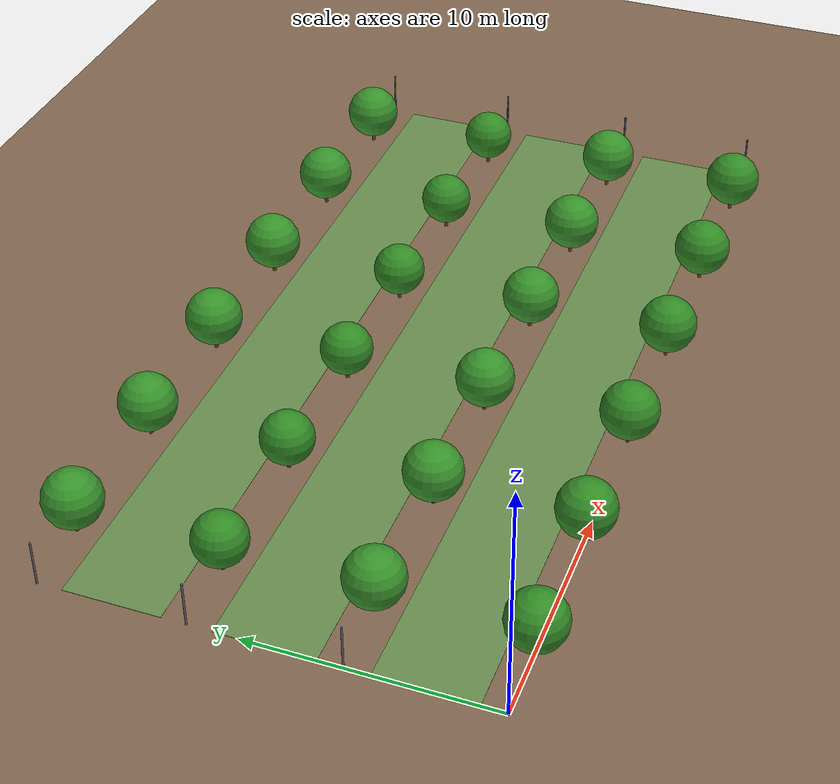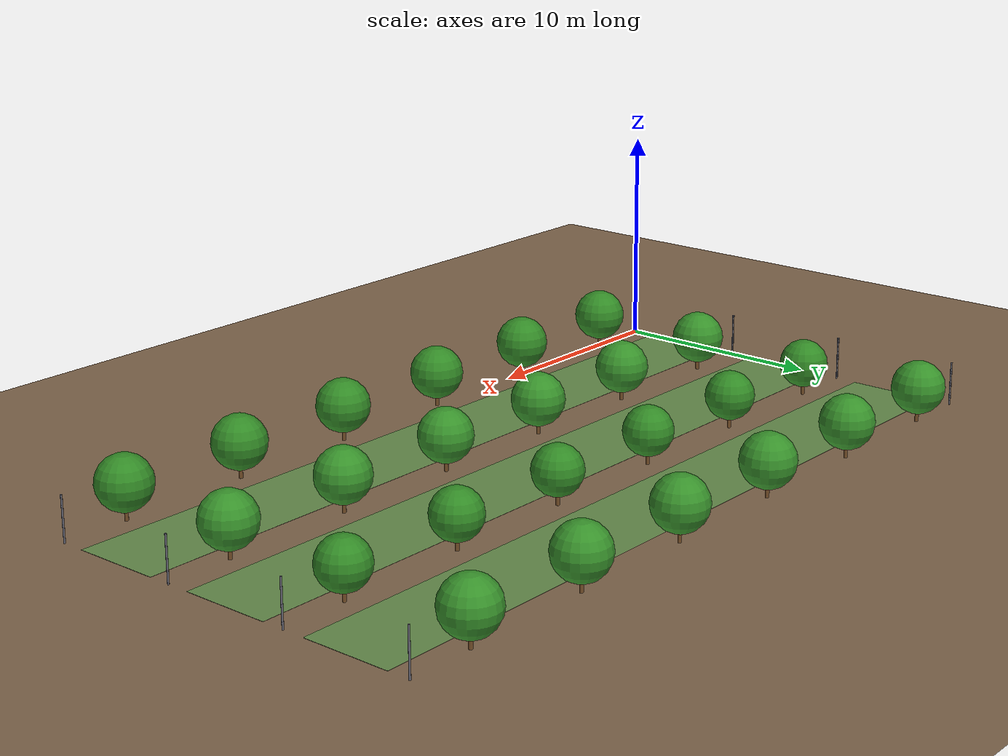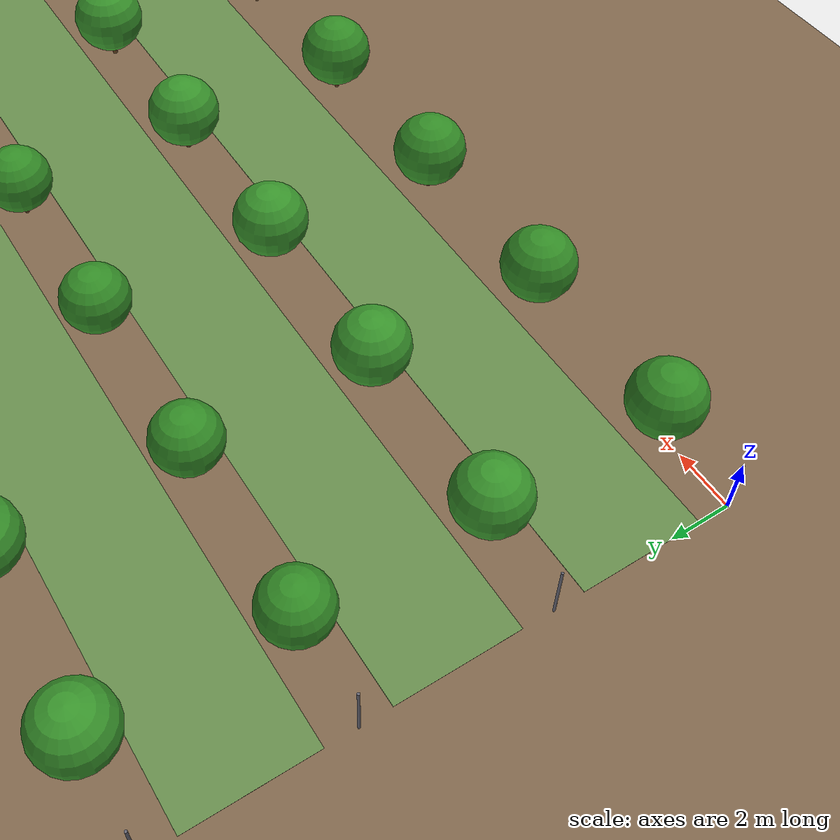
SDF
<?xml version="1.0"?>
<!--
  pear_orchard.sdf — 배 과수원 시뮬레이션 월드
  6x6m 간격 나무 배치, 수고 2m, 줄기+수관부 구조
  crop_row_detector 카메라 온리 경로 생성 검증용
-->
<sdf version="1.9">
  <world name="pear_orchard">

    <!-- 물리 엔진 설정 -->
    <physics name="default_physics" type="ode">
      <max_step_size>0.004</max_step_size>
      <real_time_factor>1.0</real_time_factor>
      <real_time_update_rate>250</real_time_update_rate>
    </physics>

    <!-- 시뮬레이션 플러그인 -->
    <plugin filename="gz-sim-physics-system"
            name="gz::sim::systems::Physics"/>
    <plugin filename="gz-sim-user-commands-system"
            name="gz::sim::systems::UserCommands"/>
    <plugin filename="gz-sim-scene-broadcaster-system"
            name="gz::sim::systems::SceneBroadcaster"/>
    <plugin filename="gz-sim-sensors-system"
            name="gz::sim::systems::Sensors">
      <render_engine>ogre2</render_engine>
    </plugin>
    <plugin filename="gz-sim-imu-system"
            name="gz::sim::systems::Imu"/>
    <plugin filename="gz-sim-navsat-system"
            name="gz::sim::systems::NavSat"/>
    <plugin filename="gz-sim-contact-system"
            name="gz::sim::systems::Contact"/>

    <!-- GPS 기준점 (나주 배 과수원 근처) -->
    <spherical_coordinates>
      <surface_model>EARTH_WGS84</surface_model>
      <latitude_deg>34.9406</latitude_deg>
      <longitude_deg>126.7103</longitude_deg>
      <elevation>30</elevation>
      <heading_deg>0</heading_deg>
    </spherical_coordinates>

    <!-- 조명 -->
    <light type="directional" name="sun">
      <cast_shadows>true</cast_shadows>
      <pose>0 0 50 0 0 0</pose>
      <diffuse>0.9 0.9 0.85 1</diffuse>
      <specular>0.3 0.3 0.3 1</specular>
      <direction>-0.5 0.1 -0.9</direction>
    </light>

    <light type="directional" name="ambient_fill">
      <cast_shadows>false</cast_shadows>
      <pose>0 0 50 0 0 0</pose>
      <diffuse>0.3 0.3 0.35 1</diffuse>
      <specular>0.0 0.0 0.0 1</specular>
      <direction>0.3 -0.2 -0.8</direction>
    </light>

    <!-- 하늘 -->
    <scene>
      <ambient>0.6 0.6 0.65 1</ambient>
      <background>0.7 0.8 0.95 1</background>
      <shadows>true</shadows>
    </scene>

    <!-- 지면: 60m x 60m 과수원 토양 (갈색) -->
    <model name="ground_plane">
      <static>true</static>
      <link name="ground_link">
        <collision name="ground_collision">
          <geometry>
            <plane>
              <normal>0 0 1</normal>
              <size>60 60</size>
            </plane>
          </geometry>
          <surface>
            <friction>
              <ode>
                <mu>1.5</mu>
                <mu2>1.5</mu2>
              </ode>
            </friction>
          </surface>
        </collision>
        <visual name="ground_visual">
          <geometry>
            <plane>
              <normal>0 0 1</normal>
              <size>60 60</size>
            </plane>
          </geometry>
          <material>
            <!-- 과수원 토양 (갈색) -->
            <ambient>0.45 0.35 0.25 1</ambient>
            <diffuse>0.5 0.4 0.3 1</diffuse>
            <specular>0.05 0.05 0.05 1</specular>
          </material>
        </visual>
      </link>
    </model>

    <!-- 배 나무 모델 매크로: 줄기(cylinder) + 수관부(ellipsoid)            -->
    <!-- 배 과수원: 6x6m 간격, 수고 ~2m, 수관폭 ~2.5m                     -->
    <!-- 5행 x 8그루 = 40그루                                             -->
    <!-- 행 방향: X축 (전방), 행간 간격: Y축 6m                            -->
    <!-- 로봇 시작: (0, 3, 0) — 1행과 2행 사이 중앙                       -->

    <model name="tree_r1_01"><static>true</static><pose>3 0 0 0 0 0</pose>
      <link name="trunk"><visual name="v"><geometry><cylinder><radius>0.08</radius><length>1.0</length></cylinder></geometry><material><ambient>0.4 0.25 0.1 1</ambient><diffuse>0.45 0.3 0.15 1</diffuse></material></visual><pose>0 0 0.5 0 0 0</pose></link>
      <link name="canopy"><visual name="v"><geometry><sphere><radius>1.2</radius></sphere></geometry><material><ambient>0.15 0.45 0.1 1</ambient><diffuse>0.2 0.55 0.15 1</diffuse></material></visual><pose>0 0 1.6 0 0 0</pose></link>
    </model>
    <model name="tree_r1_02"><static>true</static><pose>9 0 0 0 0 0</pose>
      <link name="trunk"><visual name="v"><geometry><cylinder><radius>0.08</radius><length>1.0</length></cylinder></geometry><material><ambient>0.4 0.25 0.1 1</ambient><diffuse>0.45 0.3 0.15 1</diffuse></material></visual><pose>0 0 0.5 0 0 0</pose></link>
      <link name="canopy"><visual name="v"><geometry><sphere><radius>1.2</radius></sphere></geometry><material><ambient>0.15 0.45 0.1 1</ambient><diffuse>0.2 0.55 0.15 1</diffuse></material></visual><pose>0 0 1.6 0 0 0</pose></link>
    </model>
    <model name="tree_r1_03"><static>true</static><pose>15 0 0 0 0 0</pose>
      <link name="trunk"><visual name="v"><geometry><cylinder><radius>0.08</radius><length>1.0</length></cylinder></geometry><material><ambient>0.4 0.25 0.1 1</ambient><diffuse>0.45 0.3 0.15 1</diffuse></material></visual><pose>0 0 0.5 0 0 0</pose></link>
      <link name="canopy"><visual name="v"><geometry><sphere><radius>1.2</radius></sphere></geometry><material><ambient>0.15 0.45 0.1 1</ambient><diffuse>0.2 0.55 0.15 1</diffuse></material></visual><pose>0 0 1.6 0 0 0</pose></link>
    </model>
    <model name="tree_r1_04"><static>true</static><pose>21 0 0 0 0 0</pose>
      <link name="trunk"><visual name="v"><geometry><cylinder><radius>0.08</radius><length>1.0</length></cylinder></geometry><material><ambient>0.4 0.25 0.1 1</ambient><diffuse>0.45 0.3 0.15 1</diffuse></material></visual><pose>0 0 0.5 0 0 0</pose></link>
      <link name="canopy"><visual name="v"><geometry><sphere><radius>1.2</radius></sphere></geometry><material><ambient>0.15 0.45 0.1 1</ambient><diffuse>0.2 0.55 0.15 1</diffuse></material></visual><pose>0 0 1.6 0 0 0</pose></link>
    </model>
    <model name="tree_r1_05"><static>true</static><pose>27 0 0 0 0 0</pose>
      <link name="trunk"><visual name="v"><geometry><cylinder><radius>0.08</radius><length>1.0</length></cylinder></geometry><material><ambient>0.4 0.25 0.1 1</ambient><diffuse>0.45 0.3 0.15 1</diffuse></material></visual><pose>0 0 0.5 0 0 0</pose></link>
      <link name="canopy"><visual name="v"><geometry><sphere><radius>1.2</radius></sphere></geometry><material><ambient>0.15 0.45 0.1 1</ambient><diffuse>0.2 0.55 0.15 1</diffuse></material></visual><pose>0 0 1.6 0 0 0</pose></link>
    </model>
    <model name="tree_r1_06"><static>true</static><pose>33 0 0 0 0 0</pose>
      <link name="trunk"><visual name="v"><geometry><cylinder><radius>0.08</radius><length>1.0</length></cylinder></geometry><material><ambient>0.4 0.25 0.1 1</ambient><diffuse>0.45 0.3 0.15 1</diffuse></material></visual><pose>0 0 0.5 0 0 0</pose></link>
      <link name="canopy"><visual name="v"><geometry><sphere><radius>1.2</radius></sphere></geometry><material><ambient>0.15 0.45 0.1 1</ambient><diffuse>0.2 0.55 0.15 1</diffuse></material></visual><pose>0 0 1.6 0 0 0</pose></link>
    </model>

    <model name="tree_r2_01"><static>true</static><pose>3 6 0 0 0 0</pose>
      <link name="trunk"><visual name="v"><geometry><cylinder><radius>0.08</radius><length>1.0</length></cylinder></geometry><material><ambient>0.4 0.25 0.1 1</ambient><diffuse>0.45 0.3 0.15 1</diffuse></material></visual><pose>0 0 0.5 0 0 0</pose></link>
      <link name="canopy"><visual name="v"><geometry><sphere><radius>1.2</radius></sphere></geometry><material><ambient>0.18 0.48 0.12 1</ambient><diffuse>0.22 0.58 0.17 1</diffuse></material></visual><pose>0 0 1.6 0 0 0</pose></link>
    </model>
    <model name="tree_r2_02"><static>true</static><pose>9 6 0 0 0 0</pose>
      <link name="trunk"><visual name="v"><geometry><cylinder><radius>0.08</radius><length>1.0</length></cylinder></geometry><material><ambient>0.4 0.25 0.1 1</ambient><diffuse>0.45 0.3 0.15 1</diffuse></material></visual><pose>0 0 0.5 0 0 0</pose></link>
      <link name="canopy"><visual name="v"><geometry><sphere><radius>1.2</radius></sphere></geometry><material><ambient>0.18 0.48 0.12 1</ambient><diffuse>0.22 0.58 0.17 1</diffuse></material></visual><pose>0 0 1.6 0 0 0</pose></link>
    </model>
    <model name="tree_r2_03"><static>true</static><pose>15 6 0 0 0 0</pose>
      <link name="trunk"><visual name="v"><geometry><cylinder><radius>0.08</radius><length>1.0</length></cylinder></geometry><material><ambient>0.4 0.25 0.1 1</ambient><diffuse>0.45 0.3 0.15 1</diffuse></material></visual><pose>0 0 0.5 0 0 0</pose></link>
      <link name="canopy"><visual name="v"><geometry><sphere><radius>1.2</radius></sphere></geometry><material><ambient>0.18 0.48 0.12 1</ambient><diffuse>0.22 0.58 0.17 1</diffuse></material></visual><pose>0 0 1.6 0 0 0</pose></link>
    </model>
    <model name="tree_r2_04"><static>true</static><pose>21 6 0 0 0 0</pose>
      <link name="trunk"><visual name="v"><geometry><cylinder><radius>0.08</radius><length>1.0</length></cylinder></geometry><material><ambient>0.4 0.25 0.1 1</ambient><diffuse>0.45 0.3 0.15 1</diffuse></material></visual><pose>0 0 0.5 0 0 0</pose></link>
      <link name="canopy"><visual name="v"><geometry><sphere><radius>1.2</radius></sphere></geometry><material><ambient>0.18 0.48 0.12 1</ambient><diffuse>0.22 0.58 0.17 1</diffuse></material></visual><pose>0 0 1.6 0 0 0</pose></link>
    </model>
    <model name="tree_r2_05"><static>true</static><pose>27 6 0 0 0 0</pose>
      <link name="trunk"><visual name="v"><geometry><cylinder><radius>0.08</radius><length>1.0</length></cylinder></geometry><material><ambient>0.4 0.25 0.1 1</ambient><diffuse>0.45 0.3 0.15 1</diffuse></material></visual><pose>0 0 0.5 0 0 0</pose></link>
      <link name="canopy"><visual name="v"><geometry><sphere><radius>1.2</radius></sphere></geometry><material><ambient>0.18 0.48 0.12 1</ambient><diffuse>0.22 0.58 0.17 1</diffuse></material></visual><pose>0 0 1.6 0 0 0</pose></link>
    </model>
    <model name="tree_r2_06"><static>true</static><pose>33 6 0 0 0 0</pose>
      <link name="trunk"><visual name="v"><geometry><cylinder><radius>0.08</radius><length>1.0</length></cylinder></geometry><material><ambient>0.4 0.25 0.1 1</ambient><diffuse>0.45 0.3 0.15 1</diffuse></material></visual><pose>0 0 0.5 0 0 0</pose></link>
      <link name="canopy"><visual name="v"><geometry><sphere><radius>1.2</radius></sphere></geometry><material><ambient>0.18 0.48 0.12 1</ambient><diffuse>0.22 0.58 0.17 1</diffuse></material></visual><pose>0 0 1.6 0 0 0</pose></link>
    </model>

    <model name="tree_r3_01"><static>true</static><pose>3 12 0 0 0 0</pose>
      <link name="trunk"><visual name="v"><geometry><cylinder><radius>0.08</radius><length>1.0</length></cylinder></geometry><material><ambient>0.4 0.25 0.1 1</ambient><diffuse>0.45 0.3 0.15 1</diffuse></material></visual><pose>0 0 0.5 0 0 0</pose></link>
      <link name="canopy"><visual name="v"><geometry><sphere><radius>1.1</radius></sphere></geometry><material><ambient>0.15 0.45 0.1 1</ambient><diffuse>0.2 0.55 0.15 1</diffuse></material></visual><pose>0 0 1.5 0 0 0</pose></link>
    </model>
    <model name="tree_r3_02"><static>true</static><pose>9 12 0 0 0 0</pose>
      <link name="trunk"><visual name="v"><geometry><cylinder><radius>0.08</radius><length>1.0</length></cylinder></geometry><material><ambient>0.4 0.25 0.1 1</ambient><diffuse>0.45 0.3 0.15 1</diffuse></material></visual><pose>0 0 0.5 0 0 0</pose></link>
      <link name="canopy"><visual name="v"><geometry><sphere><radius>1.1</radius></sphere></geometry><material><ambient>0.15 0.45 0.1 1</ambient><diffuse>0.2 0.55 0.15 1</diffuse></material></visual><pose>0 0 1.5 0 0 0</pose></link>
    </model>
    <model name="tree_r3_03"><static>true</static><pose>15 12 0 0 0 0</pose>
      <link name="trunk"><visual name="v"><geometry><cylinder><radius>0.08</radius><length>1.0</length></cylinder></geometry><material><ambient>0.4 0.25 0.1 1</ambient><diffuse>0.45 0.3 0.15 1</diffuse></material></visual><pose>0 0 0.5 0 0 0</pose></link>
      <link name="canopy"><visual name="v"><geometry><sphere><radius>1.1</radius></sphere></geometry><material><ambient>0.15 0.45 0.1 1</ambient><diffuse>0.2 0.55 0.15 1</diffuse></material></visual><pose>0 0 1.5 0 0 0</pose></link>
    </model>
    <model name="tree_r3_04"><static>true</static><pose>21 12 0 0 0 0</pose>
      <link name="trunk"><visual name="v"><geometry><cylinder><radius>0.08</radius><length>1.0</length></cylinder></geometry><material><ambient>0.4 0.25 0.1 1</ambient><diffuse>0.45 0.3 0.15 1</diffuse></material></visual><pose>0 0 0.5 0 0 0</pose></link>
      <link name="canopy"><visual name="v"><geometry><sphere><radius>1.1</radius></sphere></geometry><material><ambient>0.15 0.45 0.1 1</ambient><diffuse>0.2 0.55 0.15 1</diffuse></material></visual><pose>0 0 1.5 0 0 0</pose></link>
    </model>
    <model name="tree_r3_05"><static>true</static><pose>27 12 0 0 0 0</pose>
      <link name="trunk"><visual name="v"><geometry><cylinder><radius>0.08</radius><length>1.0</length></cylinder></geometry><material><ambient>0.4 0.25 0.1 1</ambient><diffuse>0.45 0.3 0.15 1</diffuse></material></visual><pose>0 0 0.5 0 0 0</pose></link>
      <link name="canopy"><visual name="v"><geometry><sphere><radius>1.1</radius></sphere></geometry><material><ambient>0.15 0.45 0.1 1</ambient><diffuse>0.2 0.55 0.15 1</diffuse></material></visual><pose>0 0 1.5 0 0 0</pose></link>
    </model>
    <model name="tree_r3_06"><static>true</static><pose>33 12 0 0 0 0</pose>
      <link name="trunk"><visual name="v"><geometry><cylinder><radius>0.08</radius><length>1.0</length></cylinder></geometry><material><ambient>0.4 0.25 0.1 1</ambient><diffuse>0.45 0.3 0.15 1</diffuse></material></visual><pose>0 0 0.5 0 0 0</pose></link>
      <link name="canopy"><visual name="v"><geometry><sphere><radius>1.1</radius></sphere></geometry><material><ambient>0.15 0.45 0.1 1</ambient><diffuse>0.2 0.55 0.15 1</diffuse></material></visual><pose>0 0 1.5 0 0 0</pose></link>
    </model>

    <model name="tree_r4_01"><static>true</static><pose>3 18 0 0 0 0</pose>
      <link name="trunk"><visual name="v"><geometry><cylinder><radius>0.08</radius><length>1.0</length></cylinder></geometry><material><ambient>0.4 0.25 0.1 1</ambient><diffuse>0.45 0.3 0.15 1</diffuse></material></visual><pose>0 0 0.5 0 0 0</pose></link>
      <link name="canopy"><visual name="v"><geometry><sphere><radius>1.2</radius></sphere></geometry><material><ambient>0.18 0.48 0.12 1</ambient><diffuse>0.22 0.58 0.17 1</diffuse></material></visual><pose>0 0 1.6 0 0 0</pose></link>
    </model>
    <model name="tree_r4_02"><static>true</static><pose>9 18 0 0 0 0</pose>
      <link name="trunk"><visual name="v"><geometry><cylinder><radius>0.08</radius><length>1.0</length></cylinder></geometry><material><ambient>0.4 0.25 0.1 1</ambient><diffuse>0.45 0.3 0.15 1</diffuse></material></visual><pose>0 0 0.5 0 0 0</pose></link>
      <link name="canopy"><visual name="v"><geometry><sphere><radius>1.2</radius></sphere></geometry><material><ambient>0.18 0.48 0.12 1</ambient><diffuse>0.22 0.58 0.17 1</diffuse></material></visual><pose>0 0 1.6 0 0 0</pose></link>
    </model>
    <model name="tree_r4_03"><static>true</static><pose>15 18 0 0 0 0</pose>
      <link name="trunk"><visual name="v"><geometry><cylinder><radius>0.08</radius><length>1.0</length></cylinder></geometry><material><ambient>0.4 0.25 0.1 1</ambient><diffuse>0.45 0.3 0.15 1</diffuse></material></visual><pose>0 0 0.5 0 0 0</pose></link>
      <link name="canopy"><visual name="v"><geometry><sphere><radius>1.2</radius></sphere></geometry><material><ambient>0.18 0.48 0.12 1</ambient><diffuse>0.22 0.58 0.17 1</diffuse></material></visual><pose>0 0 1.6 0 0 0</pose></link>
    </model>
    <model name="tree_r4_04"><static>true</static><pose>21 18 0 0 0 0</pose>
      <link name="trunk"><visual name="v"><geometry><cylinder><radius>0.08</radius><length>1.0</length></cylinder></geometry><material><ambient>0.4 0.25 0.1 1</ambient><diffuse>0.45 0.3 0.15 1</diffuse></material></visual><pose>0 0 0.5 0 0 0</pose></link>
      <link name="canopy"><visual name="v"><geometry><sphere><radius>1.2</radius></sphere></geometry><material><ambient>0.18 0.48 0.12 1</ambient><diffuse>0.22 0.58 0.17 1</diffuse></material></visual><pose>0 0 1.6 0 0 0</pose></link>
    </model>
    <model name="tree_r4_05"><static>true</static><pose>27 18 0 0 0 0</pose>
      <link name="trunk"><visual name="v"><geometry><cylinder><radius>0.08</radius><length>1.0</length></cylinder></geometry><material><ambient>0.4 0.25 0.1 1</ambient><diffuse>0.45 0.3 0.15 1</diffuse></material></visual><pose>0 0 0.5 0 0 0</pose></link>
      <link name="canopy"><visual name="v"><geometry><sphere><radius>1.2</radius></sphere></geometry><material><ambient>0.18 0.48 0.12 1</ambient><diffuse>0.22 0.58 0.17 1</diffuse></material></visual><pose>0 0 1.6 0 0 0</pose></link>
    </model>
    <model name="tree_r4_06"><static>true</static><pose>33 18 0 0 0 0</pose>
      <link name="trunk"><visual name="v"><geometry><cylinder><radius>0.08</radius><length>1.0</length></cylinder></geometry><material><ambient>0.4 0.25 0.1 1</ambient><diffuse>0.45 0.3 0.15 1</diffuse></material></visual><pose>0 0 0.5 0 0 0</pose></link>
      <link name="canopy"><visual name="v"><geometry><sphere><radius>1.2</radius></sphere></geometry><material><ambient>0.18 0.48 0.12 1</ambient><diffuse>0.22 0.58 0.17 1</diffuse></material></visual><pose>0 0 1.6 0 0 0</pose></link>
    </model>

    <!-- 행 끝 쇠기둥 (각 행 시작/끝에 1개씩)                              -->
    <!-- 배 과수원: 쇠기둥에 쇠줄 연결하여 나무 지지                       -->
    <model name="post_r1_start"><static>true</static><pose>0 0 0 0 0 0</pose>
      <link name="link"><visual name="v"><geometry><cylinder><radius>0.04</radius><length>2.0</length></cylinder></geometry><material><ambient>0.3 0.3 0.35 1</ambient><diffuse>0.4 0.4 0.45 1</diffuse></material></visual><pose>0 0 1.0 0 0 0</pose>
      <collision name="c"><geometry><cylinder><radius>0.04</radius><length>2.0</length></cylinder></geometry><pose>0 0 1.0 0 0 0</pose></collision></link>
    </model>
    <model name="post_r1_end"><static>true</static><pose>36 0 0 0 0 0</pose>
      <link name="link"><visual name="v"><geometry><cylinder><radius>0.04</radius><length>2.0</length></cylinder></geometry><material><ambient>0.3 0.3 0.35 1</ambient><diffuse>0.4 0.4 0.45 1</diffuse></material></visual><pose>0 0 1.0 0 0 0</pose>
      <collision name="c"><geometry><cylinder><radius>0.04</radius><length>2.0</length></cylinder></geometry><pose>0 0 1.0 0 0 0</pose></collision></link>
    </model>
    <model name="post_r2_start"><static>true</static><pose>0 6 0 0 0 0</pose>
      <link name="link"><visual name="v"><geometry><cylinder><radius>0.04</radius><length>2.0</length></cylinder></geometry><material><ambient>0.3 0.3 0.35 1</ambient><diffuse>0.4 0.4 0.45 1</diffuse></material></visual><pose>0 0 1.0 0 0 0</pose>
      <collision name="c"><geometry><cylinder><radius>0.04</radius><length>2.0</length></cylinder></geometry><pose>0 0 1.0 0 0 0</pose></collision></link>
    </model>
    <model name="post_r2_end"><static>true</static><pose>36 6 0 0 0 0</pose>
      <link name="link"><visual name="v"><geometry><cylinder><radius>0.04</radius><length>2.0</length></cylinder></geometry><material><ambient>0.3 0.3 0.35 1</ambient><diffuse>0.4 0.4 0.45 1</diffuse></material></visual><pose>0 0 1.0 0 0 0</pose>
      <collision name="c"><geometry><cylinder><radius>0.04</radius><length>2.0</length></cylinder></geometry><pose>0 0 1.0 0 0 0</pose></collision></link>
    </model>
    <model name="post_r3_start"><static>true</static><pose>0 12 0 0 0 0</pose>
      <link name="link"><visual name="v"><geometry><cylinder><radius>0.04</radius><length>2.0</length></cylinder></geometry><material><ambient>0.3 0.3 0.35 1</ambient><diffuse>0.4 0.4 0.45 1</diffuse></material></visual><pose>0 0 1.0 0 0 0</pose>
      <collision name="c"><geometry><cylinder><radius>0.04</radius><length>2.0</length></cylinder></geometry><pose>0 0 1.0 0 0 0</pose></collision></link>
    </model>
    <model name="post_r3_end"><static>true</static><pose>36 12 0 0 0 0</pose>
      <link name="link"><visual name="v"><geometry><cylinder><radius>0.04</radius><length>2.0</length></cylinder></geometry><material><ambient>0.3 0.3 0.35 1</ambient><diffuse>0.4 0.4 0.45 1</diffuse></material></visual><pose>0 0 1.0 0 0 0</pose>
      <collision name="c"><geometry><cylinder><radius>0.04</radius><length>2.0</length></cylinder></geometry><pose>0 0 1.0 0 0 0</pose></collision></link>
    </model>
    <model name="post_r4_start"><static>true</static><pose>0 18 0 0 0 0</pose>
      <link name="link"><visual name="v"><geometry><cylinder><radius>0.04</radius><length>2.0</length></cylinder></geometry><material><ambient>0.3 0.3 0.35 1</ambient><diffuse>0.4 0.4 0.45 1</diffuse></material></visual><pose>0 0 1.0 0 0 0</pose>
      <collision name="c"><geometry><cylinder><radius>0.04</radius><length>2.0</length></cylinder></geometry><pose>0 0 1.0 0 0 0</pose></collision></link>
    </model>
    <model name="post_r4_end"><static>true</static><pose>36 18 0 0 0 0</pose>
      <link name="link"><visual name="v"><geometry><cylinder><radius>0.04</radius><length>2.0</length></cylinder></geometry><material><ambient>0.3 0.3 0.35 1</ambient><diffuse>0.4 0.4 0.45 1</diffuse></material></visual><pose>0 0 1.0 0 0 0</pose>
      <collision name="c"><geometry><cylinder><radius>0.04</radius><length>2.0</length></cylinder></geometry><pose>0 0 1.0 0 0 0</pose></collision></link>
    </model>

    <!-- 행간 풀/잡초 표현 (통로 바닥에 약간 다른 색상의 박스)             -->
    <model name="grass_strip_1"><static>true</static>
      <pose>18 3 0.005 0 0 0</pose>
      <link name="link"><visual name="v"><geometry><box><size>36 4 0.01</size></box></geometry>
        <material><ambient>0.35 0.5 0.25 1</ambient><diffuse>0.4 0.55 0.3 1</diffuse></material></visual></link>
    </model>
    <model name="grass_strip_2"><static>true</static>
      <pose>18 9 0.005 0 0 0</pose>
      <link name="link"><visual name="v"><geometry><box><size>36 4 0.01</size></box></geometry>
        <material><ambient>0.35 0.5 0.25 1</ambient><diffuse>0.4 0.55 0.3 1</diffuse></material></visual></link>
    </model>
    <model name="grass_strip_3"><static>true</static>
      <pose>18 15 0.005 0 0 0</pose>
      <link name="link"><visual name="v"><geometry><box><size>36 4 0.01</size></box></geometry>
        <material><ambient>0.35 0.5 0.25 1</ambient><diffuse>0.4 0.55 0.3 1</diffuse></material></visual></link>
    </model>

  </world>
</sdf>
